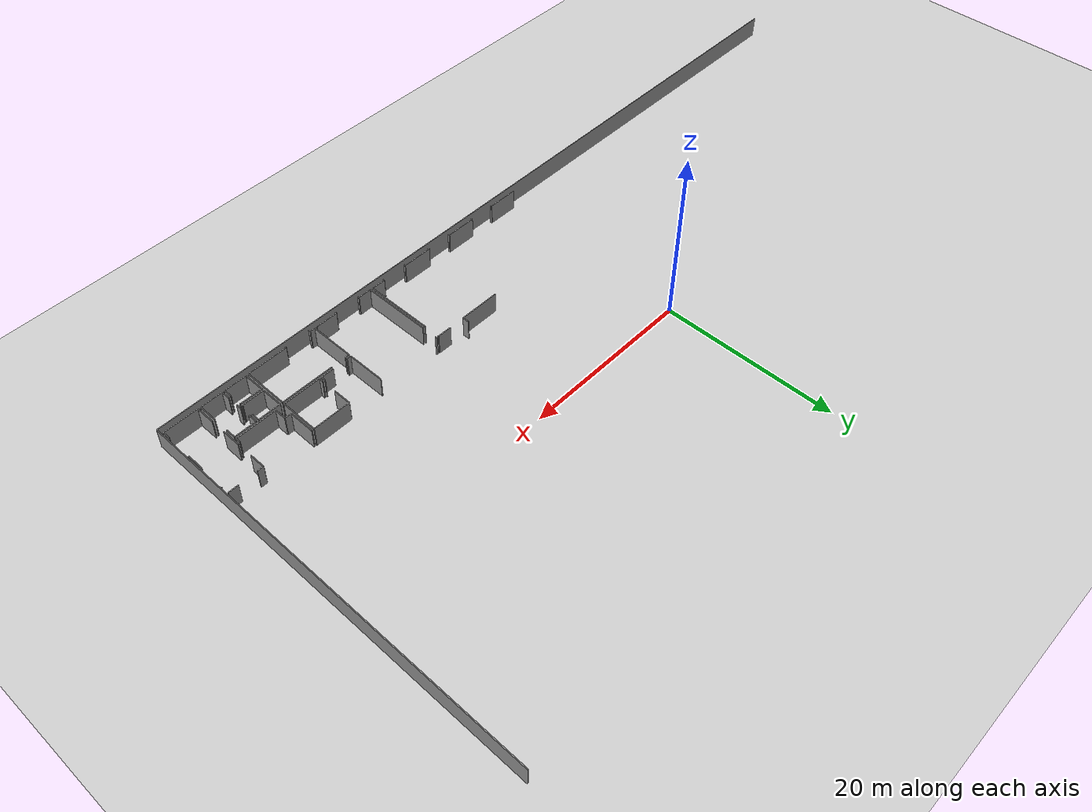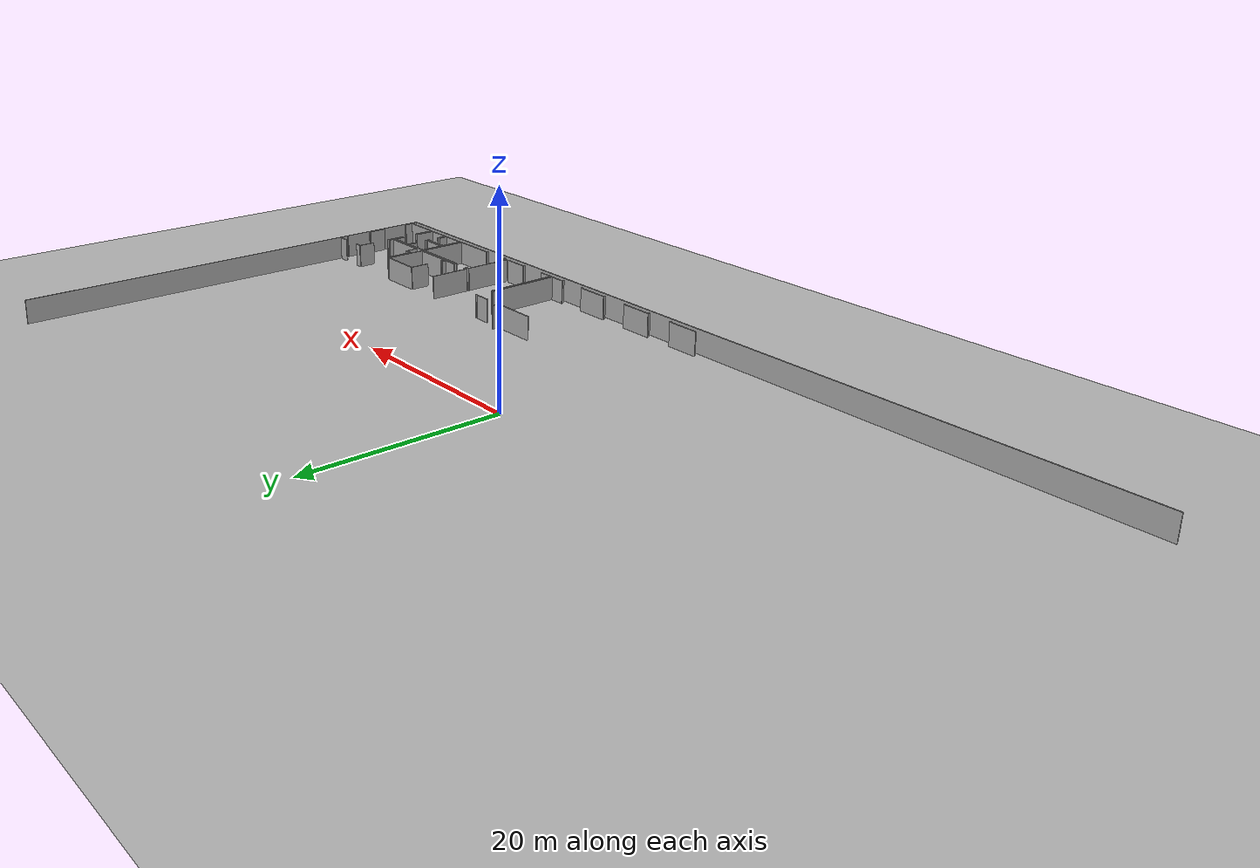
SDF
<sdf version="1.6">
 <world name="default">
  <model name="ground_plane">
   <static>1</static>
   <link name="link">
    <collision name="collision">
     <geometry><plane><normal>0 0 1</normal><size>100 100</size></plane></geometry>
     <surface><friction><ode><mu>100</mu><mu2>50</mu2></ode></friction></surface>
    </collision>
    <visual name="visual">
     <cast_shadows>0</cast_shadows>
     <geometry><plane><normal>0 0 1</normal><size>100 100</size></plane></geometry>
     <material>
      <script><uri>file://media/materials/scripts/gazebo.material</uri><name>Gazebo/Grey</name></script>
     </material>
    </visual>
   </link>
  </model>
  <model name="50045229">
   <static>1</static>
   <link name="Wall_283">
    <collision name="Wall_283_Collision">
     <geometry><box><size>4.68022185838 0.1 2.5</size></box></geometry>
     <pose>2.34011092919 0 1.25 0 0 0</pose>
    </collision>
    <visual name="Wall_283_Visual">
     <pose>2.34011092919 0 1.25 0 0 0</pose>
     <geometry><box><size>4.68022185838 0.1 2.5</size></box></geometry>
     <material>
      <script><uri>file://media/materials/scripts/gazebo.material</uri><name>Gazebo/Grey</name></script>
      <ambient>1 1 1 1</ambient>
     </material>
    </visual>
    <pose>59.4673114267 -36.8425795479 0 0 0 0.0</pose>
   </link>
   <link name="Wall_284">
    <collision name="Wall_284_Collision">
     <geometry><box><size>0.764827577454 0.1 2.5</size></box></geometry>
     <pose>0.382413788727 0 1.25 0 0 0</pose>
    </collision>
    <visual name="Wall_284_Visual">
     <pose>0.382413788727 0 1.25 0 0 0</pose>
     <geometry><box><size>0.764827577454 0.1 2.5</size></box></geometry>
     <material>
      <script><uri>file://media/materials/scripts/gazebo.material</uri><name>Gazebo/Grey</name></script>
      <ambient>1 1 1 1</ambient>
     </material>
    </visual>
    <pose>64.1475332851 -36.8425795479 0 0 0 1.57079632679</pose>
   </link>
   <link name="Wall_286">
    <collision name="Wall_286_Collision">
     <geometry><box><size>1.6311921715 0.1 2.5</size></box></geometry>
     <pose>0.815596085748 0 1.25 0 0 0</pose>
    </collision>
    <visual name="Wall_286_Visual">
     <pose>0.815596085748 0 1.25 0 0 0</pose>
     <geometry><box><size>1.6311921715 0.1 2.5</size></box></geometry>
     <material>
      <script><uri>file://media/materials/scripts/gazebo.material</uri><name>Gazebo/Grey</name></script>
      <ambient>1 1 1 1</ambient>
     </material>
    </visual>
    <pose>65.9755803475 -36.8392795949 0 0 0 0.0</pose>
   </link>
   <link name="Wall_287">
    <collision name="Wall_287_Collision">
     <geometry><box><size>0.13631344477 0.1 2.5</size></box></geometry>
     <pose>0.0681567223851 0 1.25 0 0 0</pose>
    </collision>
    <visual name="Wall_287_Visual">
     <pose>0.0681567223851 0 1.25 0 0 0</pose>
     <geometry><box><size>0.13631344477 0.1 2.5</size></box></geometry>
     <material>
      <script><uri>file://media/materials/scripts/gazebo.material</uri><name>Gazebo/Grey</name></script>
      <ambient>1 1 1 1</ambient>
     </material>
    </visual>
    <pose>67.606772519 -36.8392795949 0 0 0 -1.57079632679</pose>
   </link>
   <link name="Wall_288">
    <collision name="Wall_288_Collision">
     <geometry><box><size>7.86911878562 0.1 2.5</size></box></geometry>
     <pose>3.93455939281 0 1.25 0 0 0</pose>
    </collision>
    <visual name="Wall_288_Visual">
     <pose>3.93455939281 0 1.25 0 0 0</pose>
     <geometry><box><size>7.86911878562 0.1 2.5</size></box></geometry>
     <material>
      <script><uri>file://media/materials/scripts/gazebo.material</uri><name>Gazebo/Grey</name></script>
      <ambient>1 1 1 1</ambient>
     </material>
    </visual>
    <pose>67.606772519 -38.7635329805 0 0 0 -1.57079632679</pose>
   </link>
   <link name="Wall_289">
    <collision name="Wall_289_Collision">
     <geometry><box><size>1.62230768254 0.1 2.5</size></box></geometry>
     <pose>0.811153841272 0 1.25 0 0 0</pose>
    </collision>
    <visual name="Wall_289_Visual">
     <pose>0.811153841272 0 1.25 0 0 0</pose>
     <geometry><box><size>1.62230768254 0.1 2.5</size></box></geometry>
     <material>
      <script><uri>file://media/materials/scripts/gazebo.material</uri><name>Gazebo/Grey</name></script>
      <ambient>1 1 1 1</ambient>
     </material>
    </visual>
    <pose>67.606772519 -46.6326517661 0 0 0 3.14159265359</pose>
   </link>
   <link name="Wall_290">
    <collision name="Wall_290_Collision">
     <geometry><box><size>0.231758240364 0.1 2.5</size></box></geometry>
     <pose>0.115879120182 0 1.25 0 0 0</pose>
    </collision>
    <visual name="Wall_290_Visual">
     <pose>0.115879120182 0 1.25 0 0 0</pose>
     <geometry><box><size>0.231758240364 0.1 2.5</size></box></geometry>
     <material>
      <script><uri>file://media/materials/scripts/gazebo.material</uri><name>Gazebo/Grey</name></script>
      <ambient>1 1 1 1</ambient>
     </material>
    </visual>
    <pose>65.9844648365 -46.6326517661 0 0 0 -1.57079632679</pose>
   </link>
   <link name="Wall_291">
    <collision name="Wall_291_Collision">
     <geometry><box><size>0.210689309421 0.1 2.5</size></box></geometry>
     <pose>0.105344654711 0 1.25 0 0 0</pose>
    </collision>
    <visual name="Wall_291_Visual">
     <pose>0.105344654711 0 1.25 0 0 0</pose>
     <geometry><box><size>0.210689309421 0.1 2.5</size></box></geometry>
     <material>
      <script><uri>file://media/materials/scripts/gazebo.material</uri><name>Gazebo/Grey</name></script>
      <ambient>1 1 1 1</ambient>
     </material>
    </visual>
    <pose>62.9650078057 -46.8644100065 0 0 0 1.57079632679</pose>
   </link>
   <link name="Wall_292">
    <collision name="Wall_292_Collision">
     <geometry><box><size>3.46863140794 0.1 2.5</size></box></geometry>
     <pose>1.73431570397 0 1.25 0 0 0</pose>
    </collision>
    <visual name="Wall_292_Visual">
     <pose>1.73431570397 0 1.25 0 0 0</pose>
     <geometry><box><size>3.46863140794 0.1 2.5</size></box></geometry>
     <material>
      <script><uri>file://media/materials/scripts/gazebo.material</uri><name>Gazebo/Grey</name></script>
      <ambient>1 1 1 1</ambient>
     </material>
    </visual>
    <pose>62.9650078057 -46.6537206971 0 0 0 3.14159265359</pose>
   </link>
   <link name="Wall_293">
    <collision name="Wall_293_Collision">
     <geometry><box><size>0.203200954448 0.1 2.5</size></box></geometry>
     <pose>0.101600477224 0 1.25 0 0 0</pose>
    </collision>
    <visual name="Wall_293_Visual">
     <pose>0.101600477224 0 1.25 0 0 0</pose>
     <geometry><box><size>0.203200954448 0.1 2.5</size></box></geometry>
     <material>
      <script><uri>file://media/materials/scripts/gazebo.material</uri><name>Gazebo/Grey</name></script>
      <ambient>1 1 1 1</ambient>
     </material>
    </visual>
    <pose>59.4963763977 -46.6537206971 0 0 0 -1.57079632679</pose>
   </link>
   <link name="Wall_294">
    <collision name="Wall_294_Collision">
     <geometry><box><size>0.203200954448 0.1 2.5</size></box></geometry>
     <pose>0.101600477224 0 1.25 0 0 0</pose>
    </collision>
    <visual name="Wall_294_Visual">
     <pose>0.101600477224 0 1.25 0 0 0</pose>
     <geometry><box><size>0.203200954448 0.1 2.5</size></box></geometry>
     <material>
      <script><uri>file://media/materials/scripts/gazebo.material</uri><name>Gazebo/Grey</name></script>
      <ambient>1 1 1 1</ambient>
     </material>
    </visual>
    <pose>56.4629580271 -46.8569216515 0 0 0 1.57079632679</pose>
   </link>
   <link name="Wall_295">
    <collision name="Wall_295_Collision">
     <geometry><box><size>3.47599284164 0.1 2.5</size></box></geometry>
     <pose>1.73799642082 0 1.25 0 0 0</pose>
    </collision>
    <visual name="Wall_295_Visual">
     <pose>1.73799642082 0 1.25 0 0 0</pose>
     <geometry><box><size>3.47599284164 0.1 2.5</size></box></geometry>
     <material>
      <script><uri>file://media/materials/scripts/gazebo.material</uri><name>Gazebo/Grey</name></script>
      <ambient>1 1 1 1</ambient>
     </material>
    </visual>
    <pose>56.4629580271 -46.6537206971 0 0 0 3.14159265359</pose>
   </link>
   <link name="Wall_296">
    <collision name="Wall_296_Collision">
     <geometry><box><size>0.21043546688 0.1 2.5</size></box></geometry>
     <pose>0.10521773344 0 1.25 0 0 0</pose>
    </collision>
    <visual name="Wall_296_Visual">
     <pose>0.10521773344 0 1.25 0 0 0</pose>
     <geometry><box><size>0.21043546688 0.1 2.5</size></box></geometry>
     <material>
      <script><uri>file://media/materials/scripts/gazebo.material</uri><name>Gazebo/Grey</name></script>
      <ambient>1 1 1 1</ambient>
     </material>
    </visual>
    <pose>52.9869651855 -46.6537206971 0 0 0 -1.57079632679</pose>
   </link>
   <link name="Wall_297">
    <collision name="Wall_297_Collision">
     <geometry><box><size>0.232265925446 0.1 2.5</size></box></geometry>
     <pose>0.116132962723 0 1.25 0 0 0</pose>
    </collision>
    <visual name="Wall_297_Visual">
     <pose>0.116132962723 0 1.25 0 0 0</pose>
     <geometry><box><size>0.232265925446 0.1 2.5</size></box></geometry>
     <material>
      <script><uri>file://media/materials/scripts/gazebo.material</uri><name>Gazebo/Grey</name></script>
      <ambient>1 1 1 1</ambient>
     </material>
    </visual>
    <pose>49.9609082486 -46.8641561639 0 0 0 1.57079632679</pose>
   </link>
   <link name="Wall_298">
    <collision name="Wall_298_Collision">
     <geometry><box><size>3.47294673114 0.1 2.5</size></box></geometry>
     <pose>1.73647336557 0 1.25 0 0 0</pose>
    </collision>
    <visual name="Wall_298_Visual">
     <pose>1.73647336557 0 1.25 0 0 0</pose>
     <geometry><box><size>3.47294673114 0.1 2.5</size></box></geometry>
     <material>
      <script><uri>file://media/materials/scripts/gazebo.material</uri><name>Gazebo/Grey</name></script>
      <ambient>1 1 1 1</ambient>
     </material>
    </visual>
    <pose>49.9609082486 -46.6318902385 0 0 0 3.14159265359</pose>
   </link>
   <link name="Wall_302">
    <collision name="Wall_302_Collision">
     <geometry><box><size>7.87635329805 0.1 2.5</size></box></geometry>
     <pose>3.93817664902 0 1.25 0 0 0</pose>
    </collision>
    <visual name="Wall_302_Visual">
     <pose>3.93817664902 0 1.25 0 0 0</pose>
     <geometry><box><size>7.87635329805 0.1 2.5</size></box></geometry>
     <material>
      <script><uri>file://media/materials/scripts/gazebo.material</uri><name>Gazebo/Grey</name></script>
      <ambient>1 1 1 1</ambient>
     </material>
    </visual>
    <pose>67.8863800784 -46.6702204622 0 0 0 1.57079632679</pose>
   </link>
   <link name="Wall_303">
    <collision name="Wall_303_Collision">
     <geometry><box><size>0.220716089809 0.1 2.5</size></box></geometry>
     <pose>0.110358044905 0 1.25 0 0 0</pose>
    </collision>
    <visual name="Wall_303_Visual">
     <pose>0.110358044905 0 1.25 0 0 0</pose>
     <geometry><box><size>0.220716089809 0.1 2.5</size></box></geometry>
     <material>
      <script><uri>file://media/materials/scripts/gazebo.material</uri><name>Gazebo/Grey</name></script>
      <ambient>1 1 1 1</ambient>
     </material>
    </visual>
    <pose>67.8863800784 -37.0197616419 0 0 0 1.57079632679</pose>
   </link>
   <link name="Wall_307">
    <collision name="Wall_307_Collision">
     <geometry><box><size>2.58259401693 0.1 2.5</size></box></geometry>
     <pose>1.29129700847 0 1.25 0 0 0</pose>
    </collision>
    <visual name="Wall_307_Visual">
     <pose>1.29129700847 0 1.25 0 0 0</pose>
     <geometry><box><size>2.58259401693 0.1 2.5</size></box></geometry>
     <material>
      <script><uri>file://media/materials/scripts/gazebo.material</uri><name>Gazebo/Grey</name></script>
      <ambient>1 1 1 1</ambient>
     </material>
    </visual>
    <pose>75.1117541789 -46.6402670424 0 0 0 3.14159265359</pose>
   </link>
   <link name="Wall_308">
    <collision name="Wall_308_Collision">
     <geometry><box><size>0.230362106385 0.1 2.5</size></box></geometry>
     <pose>0.115181053193 0 1.25 0 0 0</pose>
    </collision>
    <visual name="Wall_308_Visual">
     <pose>0.115181053193 0 1.25 0 0 0</pose>
     <geometry><box><size>0.230362106385 0.1 2.5</size></box></geometry>
     <material>
      <script><uri>file://media/materials/scripts/gazebo.material</uri><name>Gazebo/Grey</name></script>
      <ambient>1 1 1 1</ambient>
     </material>
    </visual>
    <pose>72.529160162 -46.6402670424 0 0 0 -1.57079632679</pose>
   </link>
   <link name="Wall_309">
    <collision name="Wall_309_Collision">
     <geometry><box><size>0.229854421302 0.1 2.5</size></box></geometry>
     <pose>0.114927210651 0 1.25 0 0 0</pose>
    </collision>
    <visual name="Wall_309_Visual">
     <pose>0.114927210651 0 1.25 0 0 0</pose>
     <geometry><box><size>0.229854421302 0.1 2.5</size></box></geometry>
     <material>
      <script><uri>file://media/materials/scripts/gazebo.material</uri><name>Gazebo/Grey</name></script>
      <ambient>1 1 1 1</ambient>
     </material>
    </visual>
    <pose>69.4737844115 -46.8706291487 0 0 0 1.57079632679</pose>
   </link>
   <link name="Wall_310">
    <collision name="Wall_310_Collision">
     <geometry><box><size>1.58767741308 0.1 2.5</size></box></geometry>
     <pose>0.793838706542 0 1.25 0 0 0</pose>
    </collision>
    <visual name="Wall_310_Visual">
     <pose>0.793838706542 0 1.25 0 0 0</pose>
     <geometry><box><size>1.58767741308 0.1 2.5</size></box></geometry>
     <material>
      <script><uri>file://media/materials/scripts/gazebo.material</uri><name>Gazebo/Grey</name></script>
      <ambient>1 1 1 1</ambient>
     </material>
    </visual>
    <pose>69.4737844115 -46.6407747274 0 0 0 -3.1230451685</pose>
   </link>
   <link name="Wall_311">
    <collision name="Wall_311_Collision">
     <geometry><box><size>5.19209534326 0.1 2.5</size></box></geometry>
     <pose>2.59604767163 0 1.25 0 0 0</pose>
    </collision>
    <visual name="Wall_311_Visual">
     <pose>2.59604767163 0 1.25 0 0 0</pose>
     <geometry><box><size>5.19209534326 0.1 2.5</size></box></geometry>
     <material>
      <script><uri>file://media/materials/scripts/gazebo.material</uri><name>Gazebo/Grey</name></script>
      <ambient>1 1 1 1</ambient>
     </material>
    </visual>
    <pose>75.3794311389 -46.6499130589 0 0 0 1.57079632679</pose>
   </link>
   <link name="Wall_312">
    <collision name="Wall_312_Collision">
     <geometry><box><size>0.509969665816 0.1 2.5</size></box></geometry>
     <pose>0.254984832908 0 1.25 0 0 0</pose>
    </collision>
    <visual name="Wall_312_Visual">
     <pose>0.254984832908 0 1.25 0 0 0</pose>
     <geometry><box><size>0.509969665816 0.1 2.5</size></box></geometry>
     <material>
      <script><uri>file://media/materials/scripts/gazebo.material</uri><name>Gazebo/Grey</name></script>
      <ambient>1 1 1 1</ambient>
     </material>
    </visual>
    <pose>75.3794311389 -41.4578177157 0 0 0 0.0</pose>
   </link>
   <link name="Wall_313">
    <collision name="Wall_313_Collision">
     <geometry><box><size>6.14222797599 0.1 2.5</size></box></geometry>
     <pose>3.07111398799 0 1.25 0 0 0</pose>
    </collision>
    <visual name="Wall_313_Visual">
     <pose>3.07111398799 0 1.25 0 0 0</pose>
     <geometry><box><size>6.14222797599 0.1 2.5</size></box></geometry>
     <material>
      <script><uri>file://media/materials/scripts/gazebo.material</uri><name>Gazebo/Grey</name></script>
      <ambient>1 1 1 1</ambient>
     </material>
    </visual>
    <pose>77.6155300867 -41.4578177157 0 0 0 0.0</pose>
   </link>
   <link name="Wall_314">
    <collision name="Wall_314_Collision">
     <geometry><box><size>5.2079605021 0.1 2.5</size></box></geometry>
     <pose>2.60398025105 0 1.25 0 0 0</pose>
    </collision>
    <visual name="Wall_314_Visual">
     <pose>2.60398025105 0 1.25 0 0 0</pose>
     <geometry><box><size>5.2079605021 0.1 2.5</size></box></geometry>
     <material>
      <script><uri>file://media/materials/scripts/gazebo.material</uri><name>Gazebo/Grey</name></script>
      <ambient>1 1 1 1</ambient>
     </material>
    </visual>
    <pose>83.7577580627 -41.4578177157 0 0 0 -1.57079632679</pose>
   </link>
   <link name="Wall_315">
    <collision name="Wall_315_Collision">
     <geometry><box><size>4.70598687634 0.1 2.5</size></box></geometry>
     <pose>2.35299343817 0 1.25 0 0 0</pose>
    </collision>
    <visual name="Wall_315_Visual">
     <pose>2.35299343817 0 1.25 0 0 0</pose>
     <geometry><box><size>4.70598687634 0.1 2.5</size></box></geometry>
     <material>
      <script><uri>file://media/materials/scripts/gazebo.material</uri><name>Gazebo/Grey</name></script>
      <ambient>1 1 1 1</ambient>
     </material>
    </visual>
    <pose>83.7577580627 -46.6657782178 0 0 0 3.14159265359</pose>
   </link>
   <link name="Wall_316">
    <collision name="Wall_316_Collision">
     <geometry><box><size>0.220716089809 0.1 2.5</size></box></geometry>
     <pose>0.110358044905 0 1.25 0 0 0</pose>
    </collision>
    <visual name="Wall_316_Visual">
     <pose>0.110358044905 0 1.25 0 0 0</pose>
     <geometry><box><size>0.220716089809 0.1 2.5</size></box></geometry>
     <material>
      <script><uri>file://media/materials/scripts/gazebo.material</uri><name>Gazebo/Grey</name></script>
      <ambient>1 1 1 1</ambient>
     </material>
    </visual>
    <pose>79.0517711863 -46.6657782178 0 0 0 -1.57079632679</pose>
   </link>
   <link name="Wall_317">
    <collision name="Wall_317_Collision">
     <geometry><box><size>0.245719580144 0.1 2.5</size></box></geometry>
     <pose>0.122859790072 0 1.25 0 0 0</pose>
    </collision>
    <visual name="Wall_317_Visual">
     <pose>0.122859790072 0 1.25 0 0 0</pose>
     <geometry><box><size>0.245719580144 0.1 2.5</size></box></geometry>
     <material>
      <script><uri>file://media/materials/scripts/gazebo.material</uri><name>Gazebo/Grey</name></script>
      <ambient>1 1 1 1</ambient>
     </material>
    </visual>
    <pose>75.9669497011 -46.8864943076 0 0 0 1.57079632679</pose>
   </link>
   <link name="Wall_318">
    <collision name="Wall_318_Collision">
     <geometry><box><size>0.587589627269 0.1 2.5</size></box></geometry>
     <pose>0.293794813635 0 1.25 0 0 0</pose>
    </collision>
    <visual name="Wall_318_Visual">
     <pose>0.293794813635 0 1.25 0 0 0</pose>
     <geometry><box><size>0.587589627269 0.1 2.5</size></box></geometry>
     <material>
      <script><uri>file://media/materials/scripts/gazebo.material</uri><name>Gazebo/Grey</name></script>
      <ambient>1 1 1 1</ambient>
     </material>
    </visual>
    <pose>75.9669497011 -46.6407747274 0 0 0 -3.12603979239</pose>
   </link>
   <link name="Wall_319">
    <collision name="Wall_319_Collision">
     <geometry><box><size>4.38284532105 0.1 2.5</size></box></geometry>
     <pose>2.19142266052 0 1.25 0 0 0</pose>
    </collision>
    <visual name="Wall_319_Visual">
     <pose>2.19142266052 0 1.25 0 0 0</pose>
     <geometry><box><size>4.38284532105 0.1 2.5</size></box></geometry>
     <material>
      <script><uri>file://media/materials/scripts/gazebo.material</uri><name>Gazebo/Grey</name></script>
      <ambient>1 1 1 1</ambient>
     </material>
    </visual>
    <pose>75.380446509 -41.2053713082 0 0 0 1.57079632679</pose>
   </link>
   <link name="Wall_323">
    <collision name="Wall_323_Collision">
     <geometry><box><size>0.518727233497 0.1 2.5</size></box></geometry>
     <pose>0.259363616749 0 1.25 0 0 0</pose>
    </collision>
    <visual name="Wall_323_Visual">
     <pose>0.259363616749 0 1.25 0 0 0</pose>
     <geometry><box><size>0.518727233497 0.1 2.5</size></box></geometry>
     <material>
      <script><uri>file://media/materials/scripts/gazebo.material</uri><name>Gazebo/Grey</name></script>
      <ambient>1 1 1 1</ambient>
     </material>
    </visual>
    <pose>79.1639695897 -40.6617675056 0 0 0 -1.57079632679</pose>
   </link>
   <link name="Wall_324">
    <collision name="Wall_324_Collision">
     <geometry><box><size>1.49170569496 0.1 2.5</size></box></geometry>
     <pose>0.745852847479 0 1.25 0 0 0</pose>
    </collision>
    <visual name="Wall_324_Visual">
     <pose>0.745852847479 0 1.25 0 0 0</pose>
     <geometry><box><size>1.49170569496 0.1 2.5</size></box></geometry>
     <material>
      <script><uri>file://media/materials/scripts/gazebo.material</uri><name>Gazebo/Grey</name></script>
      <ambient>1 1 1 1</ambient>
     </material>
    </visual>
    <pose>79.1639695897 -41.1804947391 0 0 0 3.14159265359</pose>
   </link>
   <link name="Wall_325">
    <collision name="Wall_325_Collision">
     <geometry><box><size>0.501195240367 0.1 2.5</size></box></geometry>
     <pose>0.250597620184 0 1.25 0 0 0</pose>
    </collision>
    <visual name="Wall_325_Visual">
     <pose>0.250597620184 0 1.25 0 0 0</pose>
     <geometry><box><size>0.501195240367 0.1 2.5</size></box></geometry>
     <material>
      <script><uri>file://media/materials/scripts/gazebo.material</uri><name>Gazebo/Grey</name></script>
      <ambient>1 1 1 1</ambient>
     </material>
    </visual>
    <pose>75.8810240008 -41.1804947391 0 0 0 -3.09193776335</pose>
   </link>
   <link name="Wall_326">
    <collision name="Wall_326_Collision">
     <geometry><box><size>0.484077726586 0.1 2.5</size></box></geometry>
     <pose>0.242038863293 0 1.25 0 0 0</pose>
    </collision>
    <visual name="Wall_326_Visual">
     <pose>0.242038863293 0 1.25 0 0 0</pose>
     <geometry><box><size>0.484077726586 0.1 2.5</size></box></geometry>
     <material>
      <script><uri>file://media/materials/scripts/gazebo.material</uri><name>Gazebo/Grey</name></script>
      <ambient>1 1 1 1</ambient>
     </material>
    </visual>
    <pose>79.4194621077 -41.176687101 0 0 0 1.57079632679</pose>
   </link>
   <link name="Wall_327">
    <collision name="Wall_327_Collision">
     <geometry><box><size>2.08861643123 0.1 2.5</size></box></geometry>
     <pose>1.04430821561 0 1.25 0 0 0</pose>
    </collision>
    <visual name="Wall_327_Visual">
     <pose>1.04430821561 0 1.25 0 0 0</pose>
     <geometry><box><size>2.08861643123 0.1 2.5</size></box></geometry>
     <material>
      <script><uri>file://media/materials/scripts/gazebo.material</uri><name>Gazebo/Grey</name></script>
      <ambient>1 1 1 1</ambient>
     </material>
    </visual>
    <pose>79.4194621077 -38.9233268603 0 0 0 1.57079632679</pose>
   </link>
   <link name="Wall_328">
    <collision name="Wall_328_Collision">
     <geometry><box><size>4.36698016221 0.1 2.5</size></box></geometry>
     <pose>2.1834900811 0 1.25 0 0 0</pose>
    </collision>
    <visual name="Wall_328_Visual">
     <pose>2.1834900811 0 1.25 0 0 0</pose>
     <geometry><box><size>4.36698016221 0.1 2.5</size></box></geometry>
     <material>
      <script><uri>file://media/materials/scripts/gazebo.material</uri><name>Gazebo/Grey</name></script>
      <ambient>1 1 1 1</ambient>
     </material>
    </visual>
    <pose>79.4194621077 -36.8347104291 0 0 0 0.0</pose>
   </link>
   <link name="Wall_329">
    <collision name="Wall_329_Collision">
     <geometry><box><size>4.36698016221 0.1 2.5</size></box></geometry>
     <pose>2.1834900811 0 1.25 0 0 0</pose>
    </collision>
    <visual name="Wall_329_Visual">
     <pose>2.1834900811 0 1.25 0 0 0</pose>
     <geometry><box><size>4.36698016221 0.1 2.5</size></box></geometry>
     <material>
      <script><uri>file://media/materials/scripts/gazebo.material</uri><name>Gazebo/Grey</name></script>
      <ambient>1 1 1 1</ambient>
     </material>
    </visual>
    <pose>83.7864422699 -36.8347104291 0 0 0 -1.57079632679</pose>
   </link>
   <link name="Wall_330">
    <collision name="Wall_330_Collision">
     <geometry><box><size>4.36705174135 0.1 2.5</size></box></geometry>
     <pose>2.18352587067 0 1.25 0 0 0</pose>
    </collision>
    <visual name="Wall_330_Visual">
     <pose>2.18352587067 0 1.25 0 0 0</pose>
     <geometry><box><size>4.36705174135 0.1 2.5</size></box></geometry>
     <material>
      <script><uri>file://media/materials/scripts/gazebo.material</uri><name>Gazebo/Grey</name></script>
      <ambient>1 1 1 1</ambient>
     </material>
    </visual>
    <pose>83.7864422699 -41.2016905913 0 0 0 3.13586713706</pose>
   </link>
   <link name="Wall_331">
    <collision name="Wall_331_Collision">
     <geometry><box><size>2.2591986191 0.1 2.5</size></box></geometry>
     <pose>1.12959930955 0 1.25 0 0 0</pose>
    </collision>
    <visual name="Wall_331_Visual">
     <pose>1.12959930955 0 1.25 0 0 0</pose>
     <geometry><box><size>2.2591986191 0.1 2.5</size></box></geometry>
     <material>
      <script><uri>file://media/materials/scripts/gazebo.material</uri><name>Gazebo/Grey</name></script>
      <ambient>1 1 1 1</ambient>
     </material>
    </visual>
    <pose>89.7733186105 -46.6629859498 0 0 0 1.57079632679</pose>
   </link>
   <link name="Wall_332">
    <collision name="Wall_332_Collision">
     <geometry><box><size>2.15575778345 0.1 2.5</size></box></geometry>
     <pose>1.07787889172 0 1.25 0 0 0</pose>
    </collision>
    <visual name="Wall_332_Visual">
     <pose>1.07787889172 0 1.25 0 0 0</pose>
     <geometry><box><size>2.15575778345 0.1 2.5</size></box></geometry>
     <material>
      <script><uri>file://media/materials/scripts/gazebo.material</uri><name>Gazebo/Grey</name></script>
      <ambient>1 1 1 1</ambient>
     </material>
    </visual>
    <pose>89.7733186105 -42.6814656868 0 0 0 1.57079632679</pose>
   </link>
   <link name="Wall_333">
    <collision name="Wall_333_Collision">
     <geometry><box><size>1.82106639252 0.1 2.5</size></box></geometry>
     <pose>0.910533196258 0 1.25 0 0 0</pose>
    </collision>
    <visual name="Wall_333_Visual">
     <pose>0.910533196258 0 1.25 0 0 0</pose>
     <geometry><box><size>1.82106639252 0.1 2.5</size></box></geometry>
     <material>
      <script><uri>file://media/materials/scripts/gazebo.material</uri><name>Gazebo/Grey</name></script>
      <ambient>1 1 1 1</ambient>
     </material>
    </visual>
    <pose>89.7733186105 -38.653111475 0 0 0 1.57079632679</pose>
   </link>
   <link name="Wall_334">
    <collision name="Wall_334_Collision">
     <geometry><box><size>0.71240909264 0.1 2.5</size></box></geometry>
     <pose>0.35620454632 0 1.25 0 0 0</pose>
    </collision>
    <visual name="Wall_334_Visual">
     <pose>0.35620454632 0 1.25 0 0 0</pose>
     <geometry><box><size>0.71240909264 0.1 2.5</size></box></geometry>
     <material>
      <script><uri>file://media/materials/scripts/gazebo.material</uri><name>Gazebo/Grey</name></script>
      <ambient>1 1 1 1</ambient>
     </material>
    </visual>
    <pose>89.7733186105 -36.8320450824 0 0 0 0.0</pose>
   </link>
   <link name="Wall_335">
    <collision name="Wall_335_Collision">
     <geometry><box><size>1.16869106093 0.1 2.5</size></box></geometry>
     <pose>0.584345530467 0 1.25 0 0 0</pose>
    </collision>
    <visual name="Wall_335_Visual">
     <pose>0.584345530467 0 1.25 0 0 0</pose>
     <geometry><box><size>1.16869106093 0.1 2.5</size></box></geometry>
     <material>
      <script><uri>file://media/materials/scripts/gazebo.material</uri><name>Gazebo/Grey</name></script>
      <ambient>1 1 1 1</ambient>
     </material>
    </visual>
    <pose>92.6280318319 -36.8320450824 0 0 0 0.0</pose>
   </link>
   <link name="Wall_337">
    <collision name="Wall_337_Collision">
     <geometry><box><size>0.152305524883 0.1 2.5</size></box></geometry>
     <pose>0.0761527624415 0 1.25 0 0 0</pose>
    </collision>
    <visual name="Wall_337_Visual">
     <pose>0.0761527624415 0 1.25 0 0 0</pose>
     <geometry><box><size>0.152305524883 0.1 2.5</size></box></geometry>
     <material>
      <script><uri>file://media/materials/scripts/gazebo.material</uri><name>Gazebo/Grey</name></script>
      <ambient>1 1 1 1</ambient>
     </material>
    </visual>
    <pose>93.7967228928 -37.72772849 0 0 0 0.0</pose>
   </link>
   <link name="Wall_338">
    <collision name="Wall_338_Collision">
     <geometry><box><size>0.199774080138 0.1 2.5</size></box></geometry>
     <pose>0.099887040069 0 1.25 0 0 0</pose>
    </collision>
    <visual name="Wall_338_Visual">
     <pose>0.099887040069 0 1.25 0 0 0</pose>
     <geometry><box><size>0.199774080138 0.1 2.5</size></box></geometry>
     <material>
      <script><uri>file://media/materials/scripts/gazebo.material</uri><name>Gazebo/Grey</name></script>
      <ambient>1 1 1 1</ambient>
     </material>
    </visual>
    <pose>93.9490284177 -40.7611468606 0 0 0 3.14159265359</pose>
   </link>
   <link name="Wall_339">
    <collision name="Wall_339_Collision">
     <geometry><box><size>1.92945715773 0.1 2.5</size></box></geometry>
     <pose>0.964728578863 0 1.25 0 0 0</pose>
    </collision>
    <visual name="Wall_339_Visual">
     <pose>0.964728578863 0 1.25 0 0 0</pose>
     <geometry><box><size>1.92945715773 0.1 2.5</size></box></geometry>
     <material>
      <script><uri>file://media/materials/scripts/gazebo.material</uri><name>Gazebo/Grey</name></script>
      <ambient>1 1 1 1</ambient>
     </material>
    </visual>
    <pose>93.7492543375 -40.7611468606 0 0 0 -1.57079632679</pose>
   </link>
   <link name="Wall_340">
    <collision name="Wall_340_Collision">
     <geometry><box><size>0.201931741741 0.1 2.5</size></box></geometry>
     <pose>0.10096587087 0 1.25 0 0 0</pose>
    </collision>
    <visual name="Wall_340_Visual">
     <pose>0.10096587087 0 1.25 0 0 0</pose>
     <geometry><box><size>0.201931741741 0.1 2.5</size></box></geometry>
     <material>
      <script><uri>file://media/materials/scripts/gazebo.material</uri><name>Gazebo/Grey</name></script>
      <ambient>1 1 1 1</ambient>
     </material>
    </visual>
    <pose>93.7492543375 -42.6906040183 0 0 0 0.0</pose>
   </link>
   <link name="Wall_341">
    <collision name="Wall_341_Collision">
     <geometry><box><size>0.214623868814 0.1 2.5</size></box></geometry>
     <pose>0.107311934407 0 1.25 0 0 0</pose>
    </collision>
    <visual name="Wall_341_Visual">
     <pose>0.107311934407 0 1.25 0 0 0</pose>
     <geometry><box><size>0.214623868814 0.1 2.5</size></box></geometry>
     <material>
      <script><uri>file://media/materials/scripts/gazebo.material</uri><name>Gazebo/Grey</name></script>
      <ambient>1 1 1 1</ambient>
     </material>
    </visual>
    <pose>93.9511860793 -45.7257992867 0 0 0 3.14159265359</pose>
   </link>
   <link name="Wall_342">
    <collision name="Wall_342_Collision">
     <geometry><box><size>0.933886710074 0.1 2.5</size></box></geometry>
     <pose>0.466943355037 0 1.25 0 0 0</pose>
    </collision>
    <visual name="Wall_342_Visual">
     <pose>0.466943355037 0 1.25 0 0 0</pose>
     <geometry><box><size>0.933886710074 0.1 2.5</size></box></geometry>
     <material>
      <script><uri>file://media/materials/scripts/gazebo.material</uri><name>Gazebo/Grey</name></script>
      <ambient>1 1 1 1</ambient>
     </material>
    </visual>
    <pose>93.7365622105 -45.7257992867 0 0 0 -1.57079632679</pose>
   </link>
   <link name="Wall_343">
    <collision name="Wall_343_Collision">
     <geometry><box><size>3.96324497383 0.1 2.5</size></box></geometry>
     <pose>1.98162248692 0 1.25 0 0 0</pose>
    </collision>
    <visual name="Wall_343_Visual">
     <pose>1.98162248692 0 1.25 0 0 0</pose>
     <geometry><box><size>3.96324497383 0.1 2.5</size></box></geometry>
     <material>
      <script><uri>file://media/materials/scripts/gazebo.material</uri><name>Gazebo/Grey</name></script>
      <ambient>1 1 1 1</ambient>
     </material>
    </visual>
    <pose>93.7365622105 -46.6596859968 0 0 0 -3.14076001432</pose>
   </link>
   <link name="Wall_344">
    <collision name="Wall_344_Collision">
     <geometry><box><size>1.36859206234 0.1 2.5</size></box></geometry>
     <pose>0.684296031172 0 1.25 0 0 0</pose>
    </collision>
    <visual name="Wall_344_Visual">
     <pose>0.684296031172 0 1.25 0 0 0</pose>
     <geometry><box><size>1.36859206234 0.1 2.5</size></box></geometry>
     <material>
      <script><uri>file://media/materials/scripts/gazebo.material</uri><name>Gazebo/Grey</name></script>
      <ambient>1 1 1 1</ambient>
     </material>
    </visual>
    <pose>84.8354465725 -41.1683102971 0 0 0 1.57079632679</pose>
   </link>
   <link name="Wall_345">
    <collision name="Wall_345_Collision">
     <geometry><box><size>0.775996649278 0.1 2.5</size></box></geometry>
     <pose>0.387998324639 0 1.25 0 0 0</pose>
    </collision>
    <visual name="Wall_345_Visual">
     <pose>0.387998324639 0 1.25 0 0 0</pose>
     <geometry><box><size>0.775996649278 0.1 2.5</size></box></geometry>
     <material>
      <script><uri>file://media/materials/scripts/gazebo.material</uri><name>Gazebo/Grey</name></script>
      <ambient>1 1 1 1</ambient>
     </material>
    </visual>
    <pose>84.8354465725 -39.7997182348 0 0 0 3.14159265359</pose>
   </link>
   <link name="Wall_346">
    <collision name="Wall_346_Collision">
     <geometry><box><size>2.97934990925 0.1 2.5</size></box></geometry>
     <pose>1.48967495463 0 1.25 0 0 0</pose>
    </collision>
    <visual name="Wall_346_Visual">
     <pose>1.48967495463 0 1.25 0 0 0</pose>
     <geometry><box><size>2.97934990925 0.1 2.5</size></box></geometry>
     <material>
      <script><uri>file://media/materials/scripts/gazebo.material</uri><name>Gazebo/Grey</name></script>
      <ambient>1 1 1 1</ambient>
     </material>
    </visual>
    <pose>84.0594499232 -39.7997182348 0 0 0 1.57079632679</pose>
   </link>
   <link name="Wall_349">
    <collision name="Wall_349_Collision">
     <geometry><box><size>0.561880465547 0.1 2.5</size></box></geometry>
     <pose>0.280940232774 0 1.25 0 0 0</pose>
    </collision>
    <visual name="Wall_349_Visual">
     <pose>0.280940232774 0 1.25 0 0 0</pose>
     <geometry><box><size>0.561880465547 0.1 2.5</size></box></geometry>
     <material>
      <script><uri>file://media/materials/scripts/gazebo.material</uri><name>Gazebo/Grey</name></script>
      <ambient>1 1 1 1</ambient>
     </material>
    </visual>
    <pose>89.5005647997 -40.6177258247 0 0 0 -1.57079632679</pose>
   </link>
   <link name="Wall_350">
    <collision name="Wall_350_Collision">
     <geometry><box><size>4.66513190305 0.1 2.5</size></box></geometry>
     <pose>2.33256595153 0 1.25 0 0 0</pose>
    </collision>
    <visual name="Wall_350_Visual">
     <pose>2.33256595153 0 1.25 0 0 0</pose>
     <geometry><box><size>4.66513190305 0.1 2.5</size></box></geometry>
     <material>
      <script><uri>file://media/materials/scripts/gazebo.material</uri><name>Gazebo/Grey</name></script>
      <ambient>1 1 1 1</ambient>
     </material>
    </visual>
    <pose>89.5005647997 -41.1796062902 0 0 0 3.13917128494</pose>
   </link>
   <link name="Wall_351">
    <collision name="Wall_351_Collision">
     <geometry><box><size>1.06004645319 0.1 2.5</size></box></geometry>
     <pose>0.530023226593 0 1.25 0 0 0</pose>
    </collision>
    <visual name="Wall_351_Visual">
     <pose>0.530023226593 0 1.25 0 0 0</pose>
     <geometry><box><size>1.06004645319 0.1 2.5</size></box></geometry>
     <material>
      <script><uri>file://media/materials/scripts/gazebo.material</uri><name>Gazebo/Grey</name></script>
      <ambient>1 1 1 1</ambient>
     </material>
    </visual>
    <pose>86.9342167054 -46.6344286639 0 0 0 1.57079632679</pose>
   </link>
   <link name="Wall_352">
    <collision name="Wall_352_Collision">
     <geometry><box><size>0.649963827438 0.1 2.5</size></box></geometry>
     <pose>0.324981913719 0 1.25 0 0 0</pose>
    </collision>
    <visual name="Wall_352_Visual">
     <pose>0.324981913719 0 1.25 0 0 0</pose>
     <geometry><box><size>0.649963827438 0.1 2.5</size></box></geometry>
     <material>
      <script><uri>file://media/materials/scripts/gazebo.material</uri><name>Gazebo/Grey</name></script>
      <ambient>1 1 1 1</ambient>
     </material>
    </visual>
    <pose>86.9342167054 -44.4069603625 0 0 0 1.57079632679</pose>
   </link>
   <link name="Wall_353">
    <collision name="Wall_353_Collision">
     <geometry><box><size>1.12477630126 0.1 2.5</size></box></geometry>
     <pose>0.56238815063 0 1.25 0 0 0</pose>
    </collision>
    <visual name="Wall_353_Visual">
     <pose>0.56238815063 0 1.25 0 0 0</pose>
     <geometry><box><size>1.12477630126 0.1 2.5</size></box></geometry>
     <material>
      <script><uri>file://media/materials/scripts/gazebo.material</uri><name>Gazebo/Grey</name></script>
      <ambient>1 1 1 1</ambient>
     </material>
    </visual>
    <pose>86.9342167054 -42.5753595045 0 0 0 1.57079632679</pose>
   </link>
   <link name="Wall_354">
    <collision name="Wall_354_Collision">
     <geometry><box><size>2.53982154869 0.1 2.5</size></box></geometry>
     <pose>1.26991077435 0 1.25 0 0 0</pose>
    </collision>
    <visual name="Wall_354_Visual">
     <pose>1.26991077435 0 1.25 0 0 0</pose>
     <geometry><box><size>2.53982154869 0.1 2.5</size></box></geometry>
     <material>
      <script><uri>file://media/materials/scripts/gazebo.material</uri><name>Gazebo/Grey</name></script>
      <ambient>1 1 1 1</ambient>
     </material>
    </visual>
    <pose>86.9342167054 -41.4505832032 0 0 0 0.0</pose>
   </link>
   <link name="Wall_355">
    <collision name="Wall_355_Collision">
     <geometry><box><size>1.21159045044 0.1 2.5</size></box></geometry>
     <pose>0.605795225222 0 1.25 0 0 0</pose>
    </collision>
    <visual name="Wall_355_Visual">
     <pose>0.605795225222 0 1.25 0 0 0</pose>
     <geometry><box><size>1.21159045044 0.1 2.5</size></box></geometry>
     <material>
      <script><uri>file://media/materials/scripts/gazebo.material</uri><name>Gazebo/Grey</name></script>
      <ambient>1 1 1 1</ambient>
     </material>
    </visual>
    <pose>89.4740382541 -41.4505832032 0 0 0 -1.57079632679</pose>
   </link>
   <link name="Wall_356">
    <collision name="Wall_356_Collision">
     <geometry><box><size>2.19573798373 0.1 2.5</size></box></geometry>
     <pose>1.09786899186 0 1.25 0 0 0</pose>
    </collision>
    <visual name="Wall_356_Visual">
     <pose>1.09786899186 0 1.25 0 0 0</pose>
     <geometry><box><size>2.19573798373 0.1 2.5</size></box></geometry>
     <material>
      <script><uri>file://media/materials/scripts/gazebo.material</uri><name>Gazebo/Grey</name></script>
      <ambient>1 1 1 1</ambient>
     </material>
    </visual>
    <pose>89.4740382541 -44.4291715849 0 0 0 -1.57079632679</pose>
   </link>
   <link name="Wall_357">
    <collision name="Wall_357_Collision">
     <geometry><box><size>2.53983938712 0.1 2.5</size></box></geometry>
     <pose>1.26991969356 0 1.25 0 0 0</pose>
    </collision>
    <visual name="Wall_357_Visual">
     <pose>1.26991969356 0 1.25 0 0 0</pose>
     <geometry><box><size>2.53983938712 0.1 2.5</size></box></geometry>
     <material>
      <script><uri>file://media/materials/scripts/gazebo.material</uri><name>Gazebo/Grey</name></script>
      <ambient>1 1 1 1</ambient>
     </material>
    </visual>
    <pose>89.4740382541 -46.6249095686 0 0 0 -3.13784473251</pose>
   </link>
   <link name="Wall_358">
    <collision name="Wall_358_Collision">
     <geometry><box><size>2.49133762327 0.1 2.5</size></box></geometry>
     <pose>1.24566881164 0 1.25 0 0 0</pose>
    </collision>
    <visual name="Wall_358_Visual">
     <pose>1.24566881164 0 1.25 0 0 0</pose>
     <geometry><box><size>2.49133762327 0.1 2.5</size></box></geometry>
     <material>
      <script><uri>file://media/materials/scripts/gazebo.material</uri><name>Gazebo/Grey</name></script>
      <ambient>1 1 1 1</ambient>
     </material>
    </visual>
    <pose>84.0623691124 -43.9396362436 0 0 0 1.57079632679</pose>
   </link>
   <link name="Wall_359">
    <collision name="Wall_359_Collision">
     <geometry><box><size>2.59363616749 0.1 2.5</size></box></geometry>
     <pose>1.29681808374 0 1.25 0 0 0</pose>
    </collision>
    <visual name="Wall_359_Visual">
     <pose>1.29681808374 0 1.25 0 0 0</pose>
     <geometry><box><size>2.59363616749 0.1 2.5</size></box></geometry>
     <material>
      <script><uri>file://media/materials/scripts/gazebo.material</uri><name>Gazebo/Grey</name></script>
      <ambient>1 1 1 1</ambient>
     </material>
    </visual>
    <pose>84.0623691124 -41.4482986204 0 0 0 0.0</pose>
   </link>
   <link name="Wall_360">
    <collision name="Wall_360_Collision">
     <geometry><box><size>1.00762796837 0.1 2.5</size></box></geometry>
     <pose>0.503813984186 0 1.25 0 0 0</pose>
    </collision>
    <visual name="Wall_360_Visual">
     <pose>0.503813984186 0 1.25 0 0 0</pose>
     <geometry><box><size>1.00762796837 0.1 2.5</size></box></geometry>
     <material>
      <script><uri>file://media/materials/scripts/gazebo.material</uri><name>Gazebo/Grey</name></script>
      <ambient>1 1 1 1</ambient>
     </material>
    </visual>
    <pose>86.6560052799 -41.4482986204 0 0 0 -1.57079632679</pose>
   </link>
   <link name="Wall_361">
    <collision name="Wall_361_Collision">
     <geometry><box><size>0.108517686479 0.1 2.5</size></box></geometry>
     <pose>0.0542588432395 0 1.25 0 0 0</pose>
    </collision>
    <visual name="Wall_361_Visual">
     <pose>0.0542588432395 0 1.25 0 0 0</pose>
     <geometry><box><size>0.108517686479 0.1 2.5</size></box></geometry>
     <material>
      <script><uri>file://media/materials/scripts/gazebo.material</uri><name>Gazebo/Grey</name></script>
      <ambient>1 1 1 1</ambient>
     </material>
    </visual>
    <pose>86.6560052799 -43.8304839508 0 0 0 -1.57079632679</pose>
   </link>
   <link name="Wall_362">
    <collision name="Wall_362_Collision">
     <geometry><box><size>2.59363624512 0.1 2.5</size></box></geometry>
     <pose>1.29681812256 0 1.25 0 0 0</pose>
    </collision>
    <visual name="Wall_362_Visual">
     <pose>1.29681812256 0 1.25 0 0 0</pose>
     <geometry><box><size>2.59363624512 0.1 2.5</size></box></geometry>
     <material>
      <script><uri>file://media/materials/scripts/gazebo.material</uri><name>Gazebo/Grey</name></script>
      <ambient>1 1 1 1</ambient>
     </material>
    </visual>
    <pose>86.6560052799 -43.9390016373 0 0 0 -3.14134797535</pose>
   </link>
   <link name="Wall_363">
    <collision name="Wall_363_Collision">
     <geometry><box><size>2.41708867989 0.1 2.5</size></box></geometry>
     <pose>1.20854433995 0 1.25 0 0 0</pose>
    </collision>
    <visual name="Wall_363_Visual">
     <pose>1.20854433995 0 1.25 0 0 0</pose>
     <geometry><box><size>2.41708867989 0.1 2.5</size></box></geometry>
     <material>
      <script><uri>file://media/materials/scripts/gazebo.material</uri><name>Gazebo/Grey</name></script>
      <ambient>1 1 1 1</ambient>
     </material>
    </visual>
    <pose>84.0623691124 -46.6326517661 0 0 0 1.57079632679</pose>
   </link>
   <link name="Wall_364">
    <collision name="Wall_364_Collision">
     <geometry><box><size>2.59363616749 0.1 2.5</size></box></geometry>
     <pose>1.29681808374 0 1.25 0 0 0</pose>
    </collision>
    <visual name="Wall_364_Visual">
     <pose>1.29681808374 0 1.25 0 0 0</pose>
     <geometry><box><size>2.59363616749 0.1 2.5</size></box></geometry>
     <material>
      <script><uri>file://media/materials/scripts/gazebo.material</uri><name>Gazebo/Grey</name></script>
      <ambient>1 1 1 1</ambient>
     </material>
    </visual>
    <pose>84.0623691124 -44.2155630862 0 0 0 0.0</pose>
   </link>
   <link name="Wall_365">
    <collision name="Wall_365_Collision">
     <geometry><box><size>0.0836411174149 0.1 2.5</size></box></geometry>
     <pose>0.0418205587074 0 1.25 0 0 0</pose>
    </collision>
    <visual name="Wall_365_Visual">
     <pose>0.0418205587074 0 1.25 0 0 0</pose>
     <geometry><box><size>0.0836411174149 0.1 2.5</size></box></geometry>
     <material>
      <script><uri>file://media/materials/scripts/gazebo.material</uri><name>Gazebo/Grey</name></script>
      <ambient>1 1 1 1</ambient>
     </material>
    </visual>
    <pose>86.6560052799 -44.2155630862 0 0 0 -1.57079632679</pose>
   </link>
   <link name="Wall_366">
    <collision name="Wall_366_Collision">
     <geometry><box><size>0.976786099582 0.1 2.5</size></box></geometry>
     <pose>0.488393049791 0 1.25 0 0 0</pose>
    </collision>
    <visual name="Wall_366_Visual">
     <pose>0.488393049791 0 1.25 0 0 0</pose>
     <geometry><box><size>0.976786099582 0.1 2.5</size></box></geometry>
     <material>
      <script><uri>file://media/materials/scripts/gazebo.material</uri><name>Gazebo/Grey</name></script>
      <ambient>1 1 1 1</ambient>
     </material>
    </visual>
    <pose>86.6560052799 -45.6566271942 0 0 0 -1.57079632679</pose>
   </link>
   <link name="Wall_367">
    <collision name="Wall_367_Collision">
     <geometry><box><size>2.59363627928 0.1 2.5</size></box></geometry>
     <pose>1.29681813964 0 1.25 0 0 0</pose>
    </collision>
    <visual name="Wall_367_Visual">
     <pose>1.29681813964 0 1.25 0 0 0</pose>
     <geometry><box><size>2.59363627928 0.1 2.5</size></box></geometry>
     <material>
      <script><uri>file://media/materials/scripts/gazebo.material</uri><name>Gazebo/Grey</name></script>
      <ambient>1 1 1 1</ambient>
     </material>
    </visual>
    <pose>86.6560052799 -46.6334132937 0 0 0 3.1412990397</pose>
   </link>
   <link name="Wall_440">
    <collision name="Wall_440_Collision">
     <geometry><box><size>47.38313724 0.1 2.5</size></box></geometry>
     <pose>23.69156862 0 1.25 0 0 0</pose>
    </collision>
    <visual name="Wall_440_Visual">
     <pose>23.69156862 0 1.25 0 0 0</pose>
     <geometry><box><size>47.38313724 0.1 2.5</size></box></geometry>
     <material>
      <script><uri>file://media/materials/scripts/gazebo.material</uri><name>Gazebo/Grey</name></script>
      <ambient>1 1 1 1</ambient>
     </material>
    </visual>
    <pose>93.9511860793 -47.38313724 0 0 0 1.57079632679</pose>
   </link>
   <link name="Wall_441">
    <collision name="Wall_441_Collision">
     <geometry><box><size>93.9511860793 0.1 2.5</size></box></geometry>
     <pose>46.9755930396 0 1.25 0 0 0</pose>
    </collision>
    <visual name="Wall_441_Visual">
     <pose>46.9755930396 0 1.25 0 0 0</pose>
     <geometry><box><size>93.9511860793 0.1 2.5</size></box></geometry>
     <material>
      <script><uri>file://media/materials/scripts/gazebo.material</uri><name>Gazebo/Grey</name></script>
      <ambient>1 1 1 1</ambient>
     </material>
    </visual>
    <pose>93.9511860793 -47.38313724 0 0 0 3.14159265359</pose>
   </link>
   <pose>-46.95 23.68313724 0 0 0 0</pose>
  </model>
 </world>
</sdf>
